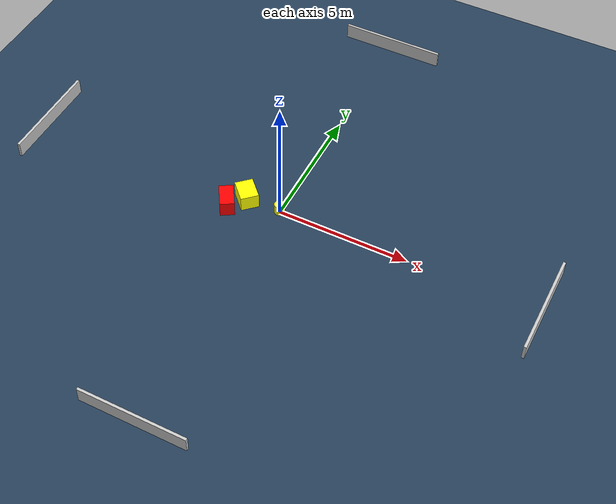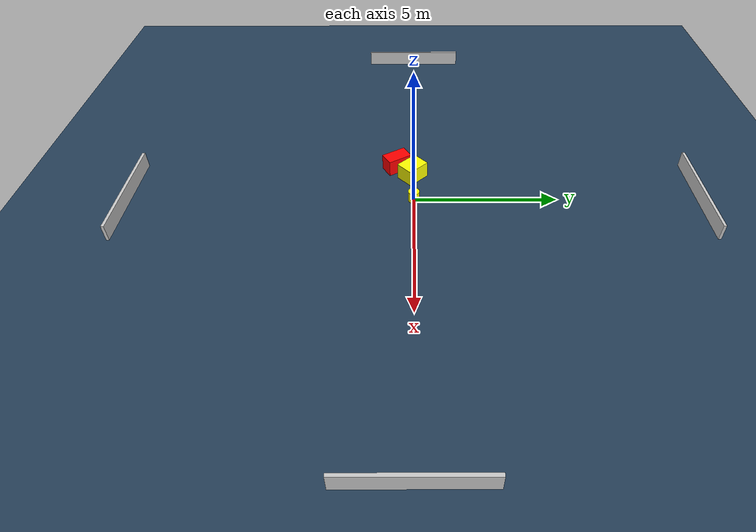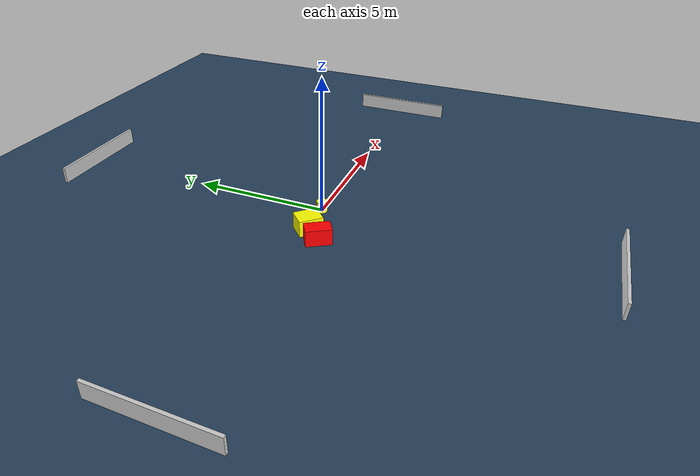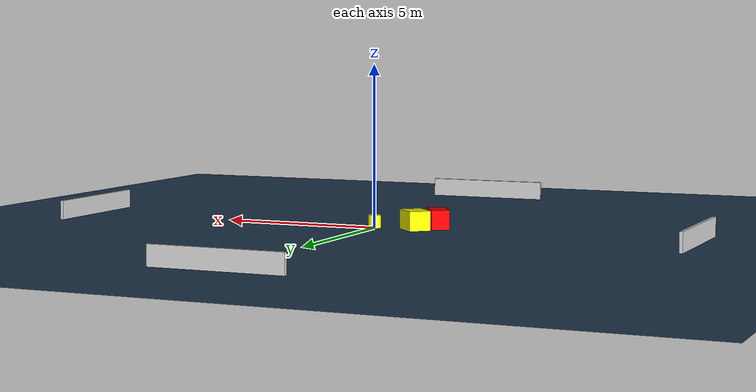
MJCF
<?xml version="1.0" ?>
<mujoco model="generated_environment">
  <option timestep="0.01" integrator="RK4" cone="elliptic"/>
  <default>
    <geom density="1"/>
  </default>
  <asset>
    <texture builtin="gradient" height="3072" name="skybox" rgb1="0.3 0.5 0.7" rgb2="0 0 0" type="skybox" width="512"/>
    <texture builtin="checker" height="300" name="groundplane" rgb1="0.2 0.3 0.4" rgb2="0.1 0.2 0.3" type="2d" width="300"/>
    <material name="groundplane" reflectance="0.2" texrepeat="5 5" texture="groundplane"/>
  </asset>
  <worldbody>
    <light dir="0 0 -1" directional="true" pos="0 0 1.5"/>
    <geom condim="3" friction="0.5 0.005 0.001" material="groundplane" name="floor" pos="0 0 0" size="0 0 0.05" type="plane"/>
    <body name="walls">
      <geom name="wall_1" condim="4" pos="-10.0 0.0 0.3" rgba="0.800000011920929 0.800000011920929 0.800000011920929 1.0" size="0.05 2.0 0.3" type="box"/>
      <geom name="wall_2" condim="4" pos="10.0 0.0 0.3" rgba="0.800000011920929 0.800000011920929 0.800000011920929 1.0" size="0.05 2.0 0.3" type="box"/>
      <geom name="wall_3" condim="4" pos="0.0 -10.0 0.3" rgba="0.800000011920929 0.800000011920929 0.800000011920929 1.0" size="2.0 0.05 0.3" type="box"/>
      <geom name="wall_4" condim="4" pos="0.0 10.0 0.3" rgba="0.800000011920929 0.800000011920929 0.800000011920929 1.0" size="2.0 0.05 0.3" type="box"/>
    </body>
    <body name="robot">
      <joint name="joint_x" type="slide" pos="0 0 0" axis="1 0 0"/>
      <joint name="joint_y" type="slide" pos="0 0 0" axis="0 1 0"/>
      <geom name="robot" type="cylinder" pos="0.0 0.0 0.2" size="0.2 0.2 0.0" mass="5.0" friction="1.0 0.005 0.0001" condim="4" rgba="1.0 1.0 0.0 1.0"/>
    </body>
    <body name="obstacle_1_movable">
      <geom name="obstacle_1_movable" condim="4" pos="-1.326190336441388 -0.04604629814854922 0.3" euler="0 0 223.79975963182122" friction="0.0 0.005 0.001" rgba="1.0 1.0 0.0 1.0" size="0.3396686427304675 0.42848933282681323 0.3" type="box" mass="0.1"/>
      <joint type="free"/>
    </body>
    <body name="obstacle_2_static">
      <geom name="obstacle_2_static" condim="4" pos="-1.8408751466702786 -0.6269788735436794 0.3" euler="0 0 211.4862395826871" friction="0.0 0.005 0.001" rgba="1.0 0.0 0.0 1.0" size="0.2701669874044694 0.45500061055023205 0.3" type="box"/>
    </body>
  </worldbody>
  <actuator>
    <motor name="actuator_x" joint="joint_x" gear="1" ctrlrange="-1 1"/>
    <motor name="actuator_y" joint="joint_y" gear="1" ctrlrange="-1 1"/>
  </actuator>
</mujoco>
